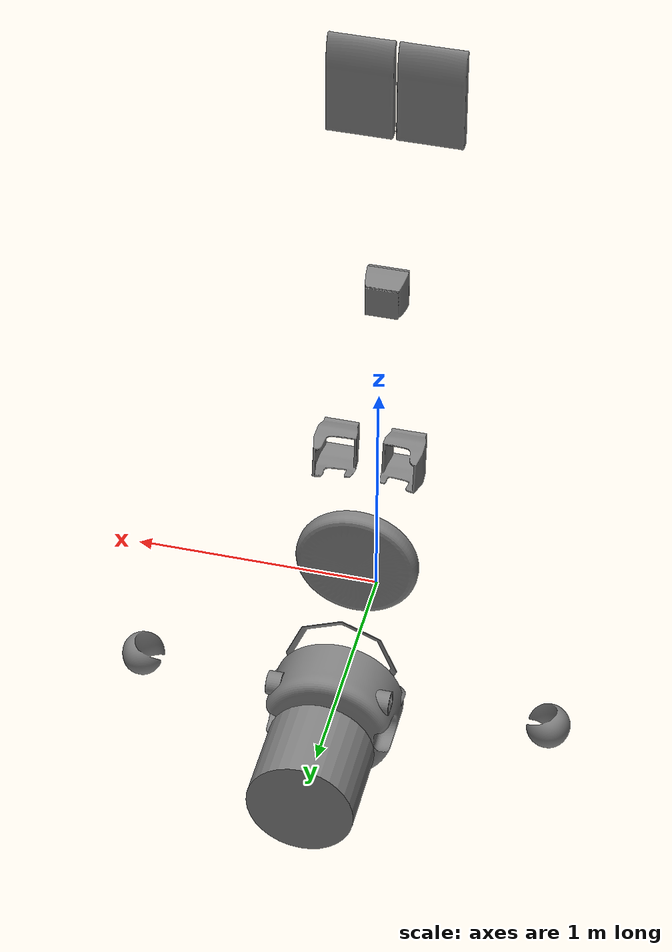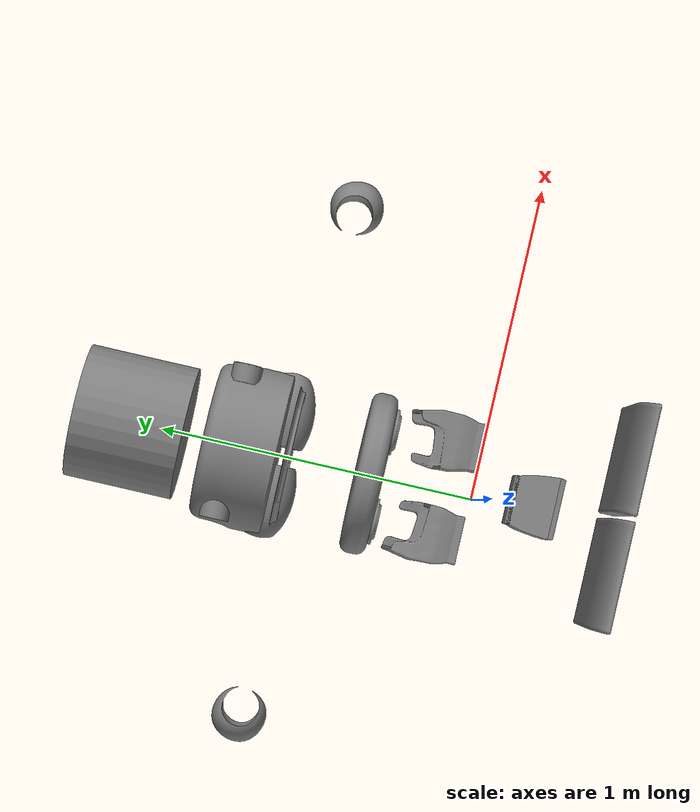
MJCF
<?xml version="1.0" ?>
<mujoco model="blender_export">
  <compiler angle="radian" meshdir="assets" texturedir="assets" autolimits="true"/>
  <default>
    <geom type="mesh"/>
  </default>
  <asset>
    <mesh file="Lower_Torso.001.stl"/>
    <mesh file="Upper_Torso.stl"/>
    <mesh file="Up_Torso_Connector.stl"/>
    <mesh file="Waist.stl"/>
    <mesh file="Upper_Leg.L.stl"/>
    <mesh file="Lower_leg.L.stl"/>
    <mesh file="Foot.L.stl"/>
    <mesh file="Upper_Leg.R.stl"/>
    <mesh file="Lower_leg.R.stl"/>
    <mesh file="Foot.R.stl"/>
    <mesh file="Shoulder_Joint.L.stl"/>
    <mesh file="Shoulder_Proc.L.stl"/>
    <mesh file="Forearm.L.stl"/>
    <mesh file="Gripper.L.stl"/>
    <mesh file="Shoulder_Joint.R.stl"/>
    <mesh file="Shoulder_Proc.R.stl"/>
    <mesh file="Forearm.R.stl"/>
    <mesh file="Grippler.R.stl"/>
  </asset>
  <worldbody>
    <body name="upper_torso" pos="-0.0 -0.046934254467487335 -0.1510855257511139">
      <joint name="upper_torso_joint" type="hinge" pos="0 0 0" axis="0 0 1"/>
      <inertial pos="0 0 0" mass="1" diaginertia="1 1 1"/>
      <body name="head" pos="-0.0 -0.046934254467487335 -0.5910855531692505">
        <joint name="head_joint" type="hinge" pos="0 0 0" axis="0 0 1"/>
        <inertial pos="0 0 0" mass="1" diaginertia="1 1 1"/>
        <geom pos="0.0 0.046934254467487335 0.5910855531692505" mesh="Lower_Torso.001"/>
      </body>
      <body name="lower_torso" pos="-0.0 -0.026934253051877022 0.13658195734024048">
        <joint name="lower_torso_joint" type="hinge" pos="0 0 0" axis="0 0 1"/>
        <inertial pos="0 0 0" mass="1" diaginertia="1 1 1"/>
        <geom pos="0.0 0.026934253051877022 -0.13658195734024048" mesh="Upper_Torso"/>
        <body name="abdomen" pos="-0.0 -0.03135300055146217 0.30497461557388306">
          <joint name="abdomen_joint" type="hinge" pos="0 0 0" axis="0 0 1"/>
          <inertial pos="0 0 0" mass="1" diaginertia="1 1 1"/>
          <geom pos="0.0 0.03135300055146217 -0.30497461557388306" mesh="Up_Torso_Connector"/>
          <body name="butt" pos="-0.0011813845485448837 -0.03135300055146217 0.3940219283103943">
            <joint name="butt_joint" type="hinge" pos="0 0 0" axis="0 0 1"/>
            <inertial pos="0 0 0" mass="1" diaginertia="1 1 1"/>
            <geom pos="0.0011813845485448837 0.03135300055146217 -0.3940219283103943" mesh="Waist"/>
            <body name="upper_leg.L" pos="-0.13744674623012543 -0.045465484261512756 0.6201940178871155">
              <joint name="upper_leg.L_joint" type="hinge" pos="0 0 0" axis="0 0 1"/>
              <inertial pos="0 0 0" mass="1" diaginertia="1 1 1"/>
              <geom pos="0.13744674623012543 0.045465484261512756 -0.6201940178871155" mesh="Upper_Leg.L"/>
              <body name="lower_leg.L" pos="-0.13744674623012543 -0.045465484261512756 0.7746409773826599">
                <joint name="lower_leg.L_joint" type="hinge" pos="0 0 0" axis="0 0 1"/>
                <inertial pos="0 0 0" mass="1" diaginertia="1 1 1"/>
                <geom pos="0.13744674623012543 0.045465484261512756 -0.7746409773826599" mesh="Lower_leg.L"/>
                <body name="foot.L" pos="-0.13744674623012543 0.042303696274757385 0.7746409773826599">
                  <joint name="foot.L_joint" type="hinge" pos="0 0 0" axis="0 0 1"/>
                  <inertial pos="0 0 0" mass="1" diaginertia="1 1 1"/>
                  <geom pos="0.13744674623012543 -0.042303696274757385 -0.7746409773826599" mesh="Foot.L"/>
                </body>
              </body>
            </body>
            <body name="upper_leg.R" pos="0.13744674623012543 -0.045465484261512756 0.6201940178871155">
              <joint name="upper_leg.R_joint" type="hinge" pos="0 0 0" axis="0 0 1"/>
              <inertial pos="0 0 0" mass="1" diaginertia="1 1 1"/>
              <geom pos="-0.13744674623012543 0.045465484261512756 -0.6201940178871155" mesh="Upper_Leg.R"/>
              <body name="lower_leg.R" pos="0.13744674623012543 -0.045465484261512756 0.7746409773826599">
                <joint name="lower_leg.R_joint" type="hinge" pos="0 0 0" axis="0 0 1"/>
                <inertial pos="0 0 0" mass="1" diaginertia="1 1 1"/>
                <geom pos="-0.13744674623012543 0.045465484261512756 -0.7746409773826599" mesh="Lower_leg.R"/>
                <body name="foot.R" pos="0.13744674623012543 0.042303696274757385 0.7746409773826599">
                  <joint name="foot.R_joint" type="hinge" pos="0 0 0" axis="0 0 1"/>
                  <inertial pos="0 0 0" mass="1" diaginertia="1 1 1"/>
                  <geom pos="-0.13744674623012543 -0.042303696274757385 -0.7746409773826599" mesh="Foot.R"/>
                </body>
              </body>
            </body>
          </body>
        </body>
        <body name="shoulder.L" pos="-0.2630476653575897 -0.04546540975570679 -0.04832768440246582">
          <joint name="shoulder.L_joint" type="hinge" pos="0 0 0" axis="0 0 1"/>
          <inertial pos="0 0 0" mass="1" diaginertia="1 1 1"/>
          <geom pos="0.2630476653575897 0.04546540975570679 0.04832768440246582" mesh="Shoulder_Joint.L"/>
          <body name="upper_arm.L" pos="-0.5699310898780823 -0.09635002911090851 -0.048329293727874756">
            <joint name="upper_arm.L_joint" type="hinge" pos="0 0 0" axis="0 0 1"/>
            <inertial pos="0 0 0" mass="1" diaginertia="1 1 1"/>
            <geom pos="0.5699310898780823 0.09635002911090851 0.048329293727874756" mesh="Shoulder_Proc.L"/>
            <body name="forearm.L" pos="-0.8617641925811768 -0.08084022998809814 -0.058915674686431885">
              <joint name="forearm.L_joint" type="hinge" pos="0 0 0" axis="0 0 1"/>
              <inertial pos="0 0 0" mass="1" diaginertia="1 1 1"/>
              <geom pos="0.8617641925811768 0.08084022998809814 0.058915674686431885" mesh="Forearm.L"/>
              <body name="gripper.L" pos="-0.9517641663551331 -0.08084022998809814 -0.058915674686431885">
                <joint name="gripper.L_joint" type="hinge" pos="0 0 0" axis="0 0 1"/>
                <inertial pos="0 0 0" mass="1" diaginertia="1 1 1"/>
                <geom pos="0.9517641663551331 0.08084022998809814 0.058915674686431885" mesh="Gripper.L"/>
              </body>
            </body>
          </body>
        </body>
        <body name="shoulder.R" pos="0.2630476653575897 -0.04546540975570679 -0.04832768440246582">
          <joint name="shoulder.R_joint" type="hinge" pos="0 0 0" axis="0 0 1"/>
          <inertial pos="0 0 0" mass="1" diaginertia="1 1 1"/>
          <geom pos="-0.2630476653575897 0.04546540975570679 0.04832768440246582" mesh="Shoulder_Joint.R"/>
          <body name="upper_arm.R" pos="0.5699310898780823 -0.09635002911090851 -0.048329293727874756">
            <joint name="upper_arm.R_joint" type="hinge" pos="0 0 0" axis="0 0 1"/>
            <inertial pos="0 0 0" mass="1" diaginertia="1 1 1"/>
            <geom pos="-0.5699310898780823 0.09635002911090851 0.048329293727874756" mesh="Shoulder_Proc.R"/>
            <body name="forearm.R" pos="0.8617641925811768 -0.08084022998809814 -0.058915674686431885">
              <joint name="forearm.R_joint" type="hinge" pos="0 0 0" axis="0 0 1"/>
              <inertial pos="0 0 0" mass="1" diaginertia="1 1 1"/>
              <geom pos="-0.8617641925811768 0.08084022998809814 0.058915674686431885" mesh="Forearm.R"/>
              <body name="gripper.R" pos="0.9517641663551331 -0.08084022998809814 -0.058915674686431885">
                <joint name="gripper.R_joint" type="hinge" pos="0 0 0" axis="0 0 1"/>
                <inertial pos="0 0 0" mass="1" diaginertia="1 1 1"/>
                <geom pos="-0.9517641663551331 0.08084022998809814 0.058915674686431885" mesh="Grippler.R"/>
              </body>
            </body>
          </body>
        </body>
      </body>
    </body>
  </worldbody>
</mujoco>
